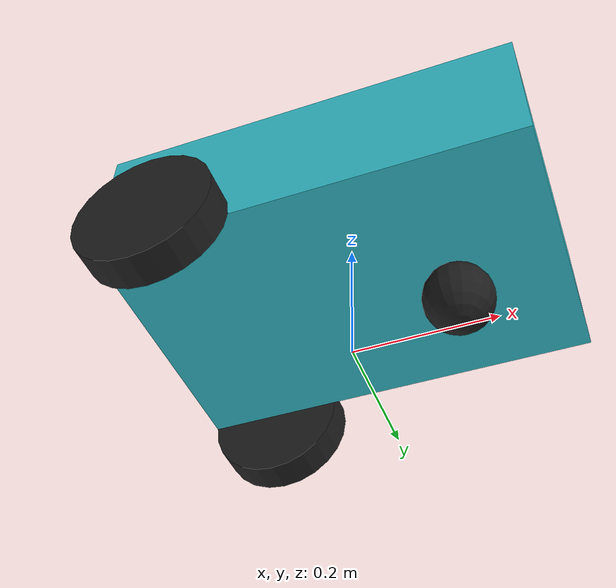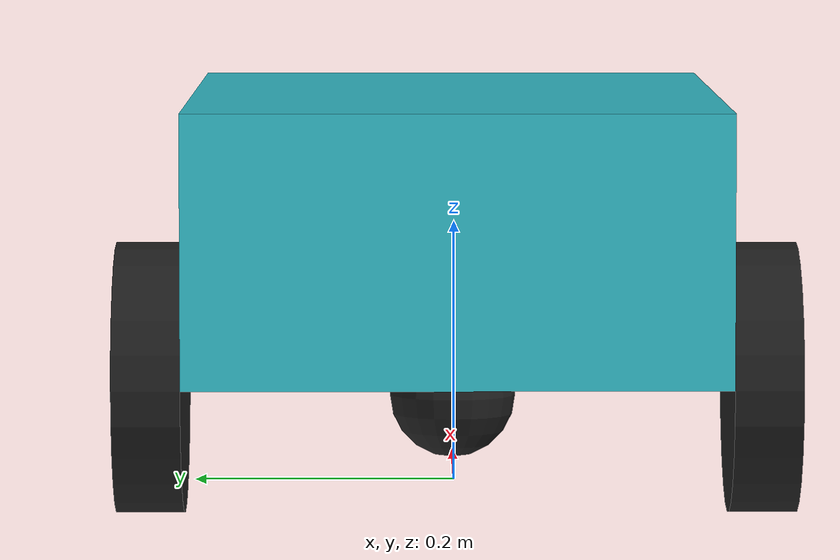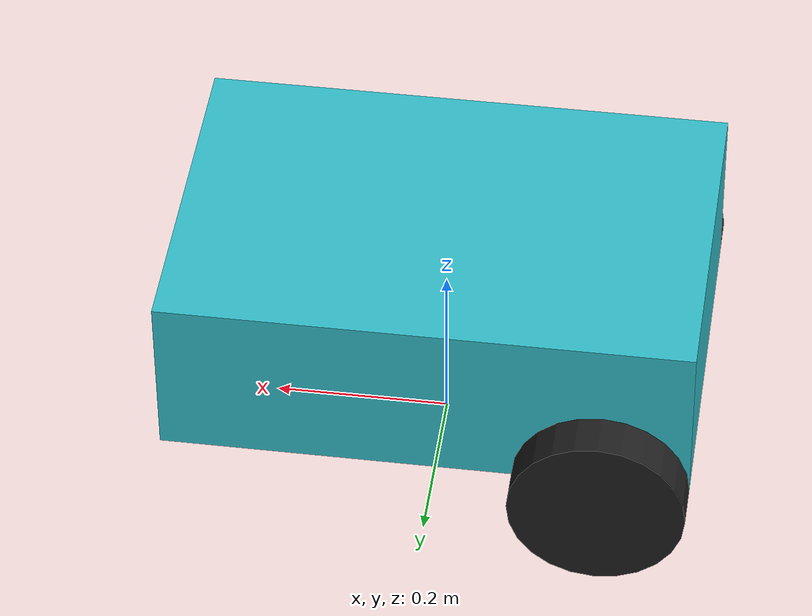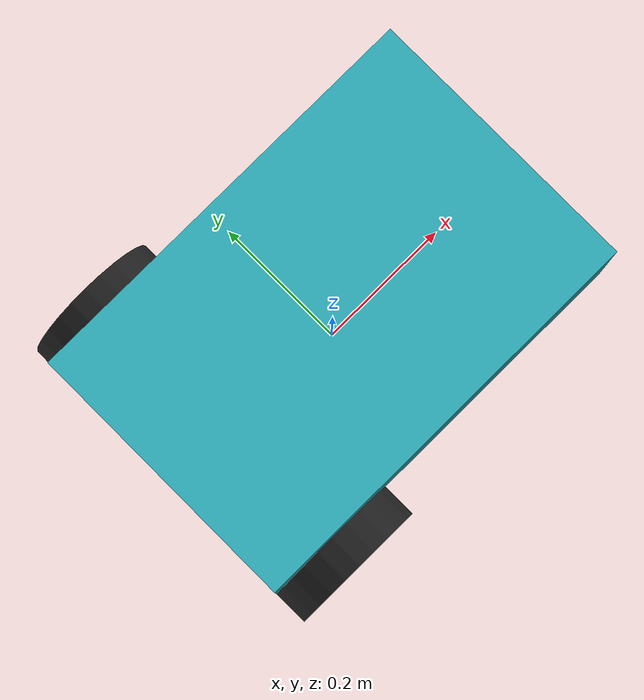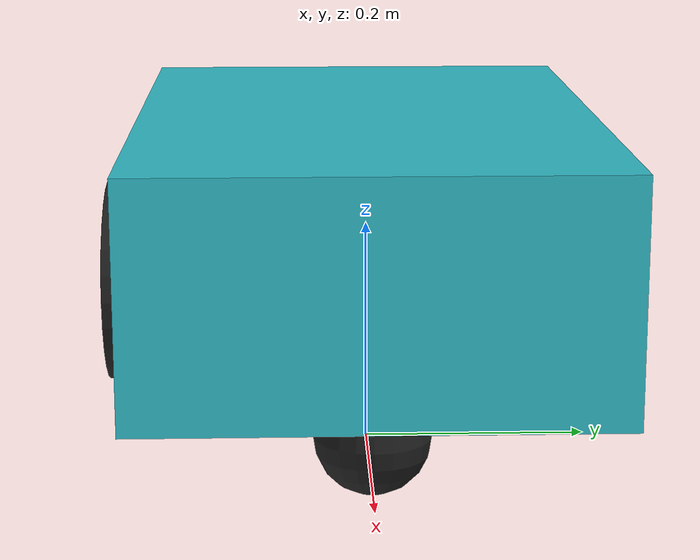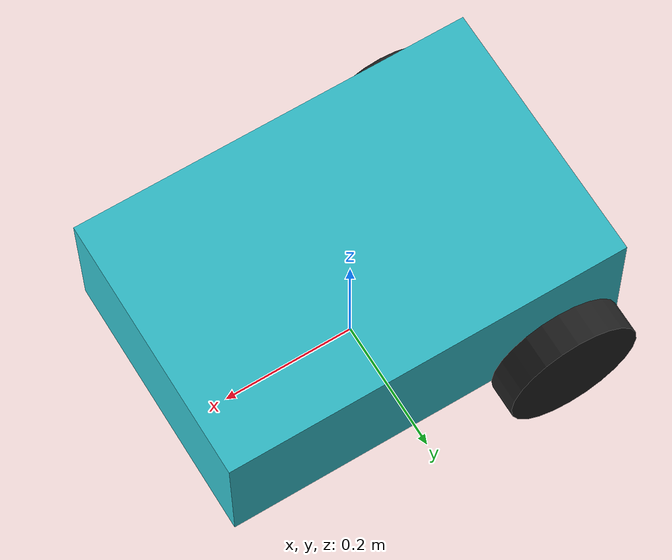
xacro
<?xml version="1.0"?>
<robot name="my_robot" xmlns:xacro="http://www.ros.org/wiki/xacro">

    <!-- === Fiziksel Parametreler === -->
    <xacro:property name="base_width" value="0.6" />
    <xacro:property name="base_lenght" value="0.4" />
    <xacro:property name="base_height" value="0.2" />
    <xacro:property name="base_mass" value="5" />

    <xacro:property name="wheel_radius" value="0.1" />
    <xacro:property name="wheel_lenght" value="0.05" />
    <xacro:property name="wheel_mass" value="1" />

    <xacro:property name="caster_wheel_radius" value="0.05" />
    <xacro:property name="caster_mass" value="1" />

    <!-- === Atalet Momentleri (İnertial) Hesaplamaları === -->
    <!-- Dikdörtgen prizma için (base) -->
    <xacro:property name="base_ixx" value="${(1/12.0)*base_mass*(base_height*base_height + base_lenght*base_lenght)}" />
    <xacro:property name="base_iyy" value="${(1/12.0)*base_mass*(base_width*base_width + base_height*base_height)}" />
    <xacro:property name="base_izz" value="${(1/12.0)*base_mass*(base_width*base_width + base_lenght*base_lenght)}" />

    <!-- Silindir için (wheel) -->
    <xacro:property name="wheel_ixx" value="${(1/12.0)*wheel_mass*(3*wheel_radius*wheel_radius + wheel_lenght*wheel_lenght)}" />
    <xacro:property name="wheel_iyy" value="${0.5*wheel_mass*wheel_radius*wheel_radius}" />
    <xacro:property name="wheel_izz" value="${(1/12.0)*wheel_mass*(3*wheel_radius*wheel_radius + wheel_lenght*wheel_lenght)}" />

    <!-- Küre için (caster wheel) -->
    <xacro:property name="caster_inertia" value="${(2/5.0)*caster_mass*caster_wheel_radius*caster_wheel_radius}" />

    <!-- === Tekerlek Makrosu === -->
    <xacro:macro name="wheel_link" params="prefix">
        <link name="${prefix}_wheel_link">
            <inertial>
                <mass value="${wheel_mass}" />
                <inertia
                    ixx="${wheel_ixx}" ixy="0.0" ixz="0.0"
                    iyy="${wheel_iyy}" iyz="0.0" izz="${wheel_izz}" />
            </inertial>
            <visual>
                <geometry>
                    <cylinder radius="${wheel_radius}" length="${wheel_lenght}"/>
                </geometry>
                <origin xyz="0.0 0.0 0.0" rpy="${pi/2} 0.0  0.0"/>
                <material name="black" />
            </visual>
            <collision>
                <geometry>
                    <cylinder radius="${wheel_radius}" length="${wheel_lenght}"/>
                </geometry>
                <origin xyz="0.0 0.0 0.0" rpy="${pi/2} 0.0  0.0"/>
                <material name="black" />
            </collision>
        </link>
    </xacro:macro>

    <!-- === Linkler === -->
    <link name="odom_link" />

    <link name="base_link">
        <inertial>
            <mass value="${base_mass}" />
            <inertia
                ixx="${base_ixx}" ixy="0.0" ixz="0.0"
                iyy="${base_iyy}" iyz="0.0" izz="${base_izz}" />
        </inertial>
        <visual>
            <geometry>
                <box size="${base_width} ${base_lenght} ${base_height}"/>
            </geometry>
            <origin xyz="0.0 0.0 0.0" rpy="0.0 0.0 0.0"/>
            <material name="cyan" />
        </visual>
        <collision>
            <geometry>
                <box size="${base_width} ${base_lenght} ${base_height}"/>
            </geometry>
            <origin xyz="0.0 0.0 0.0" rpy="0.0 0.0 0.0"/>
            <material name="cyan" />
        </collision>
    </link>

    <link name="caster_wheel_link">
        <inertial>
            <mass value="${caster_mass}" />
            <inertia
                ixx="${caster_inertia}" ixy="0.0" ixz="0.0"
                iyy="${caster_inertia}" iyz="0.0" izz="${caster_inertia}" />
        </inertial>
        <visual>
            <geometry>
                <sphere radius="${caster_wheel_radius}"/>
            </geometry>
            <origin xyz="0.0 0.0 0.0" rpy="0.0 0.0 0.0"/>
            <material name="black" />
        </visual>
        <collision>
            <geometry>
                <sphere radius="${caster_wheel_radius}"/>
            </geometry>
            <origin xyz="0.0 0.0 0.0" rpy="0.0 0.0 0.0"/>
            <material name="black" />
        </collision>
    </link>

    <xacro:wheel_link prefix = "right" />
    <xacro:wheel_link prefix = "left" />

    <!-- === Eklem Tanımları === -->
    <joint name="base_joint" type="fixed">
        <parent link="odom_link"/>
        <child link="base_link"/>
        <origin xyz="0 0 ${(base_height/2)+wheel_radius}" rpy="0.0 0.0 0.0"/>
    </joint>
    <joint name="base_right_wheel_joint" type="continuous">
        <parent link="base_link"/>
        <child link="right_wheel_link"/>
        <origin xyz="${-(base_width*2/6)} ${-( (base_lenght + wheel_lenght)/2)} ${-wheel_radius}" rpy="0.0 0.0 0.0"/>
        <axis xyz="0 1 0.0"/>
        <!-- Cismin hangi eksenlerde dönüşüne müsaade ettiğimiz.-->        <!--Duruş ayarlandıktan sonra bakıyoruz yeşil yani y ekseni etrafında dönmeli-->
        <limit lower="0.0" upper="0.0" effort="0.0" velocity="0.0"/>
    </joint>

    <joint name="base_left_wheel_joint" type="continuous">
        <parent link="base_link"/>
        <child link="left_wheel_link"/>
        <origin xyz="${-(base_width*2/6)} ${( (base_lenght + wheel_lenght)/2)} ${-wheel_radius}" rpy="0.0 0.0 0.0"/>
        <axis xyz="0 1 0.0"/>
        <!-- Cismin hangi eksenlerde dönüşüne müsaade ettiğimiz.-->        <!--Duruş ayarlandıktan sonra bakıyoruz yeşil yani y ekseni etrafında dönmeli-->
        <limit lower="0.0" upper="0.0" effort="0.0" velocity="0.0"/>
    </joint>

    <joint name="base_caster_wheel_joint" type="fixed">
        <parent link="base_link"/>
        <child link="caster_wheel_link"/>
        <origin xyz="${base_width/4} 0 ${-(base_height/2 + caster_wheel_radius)}" rpy="0.0 0.0 0.0"/>
    </joint>
</robot>
